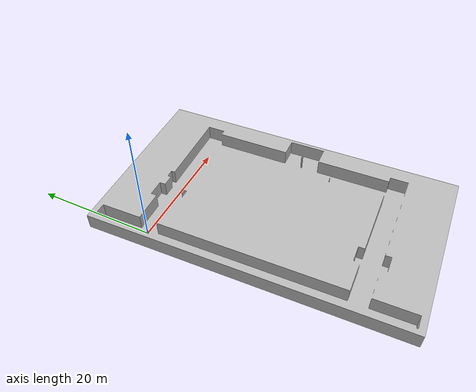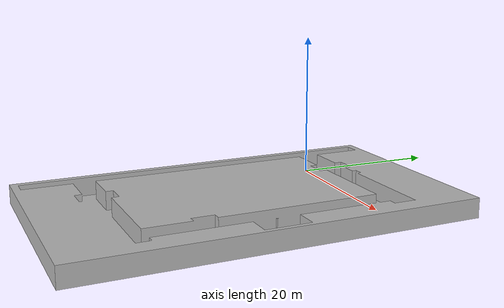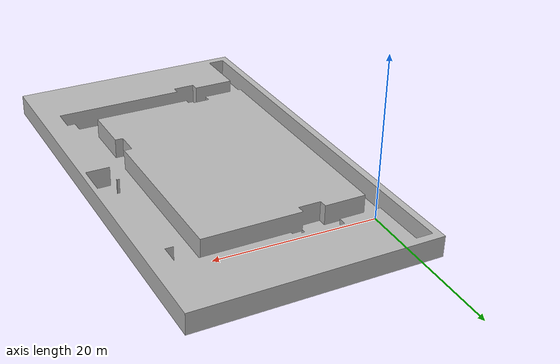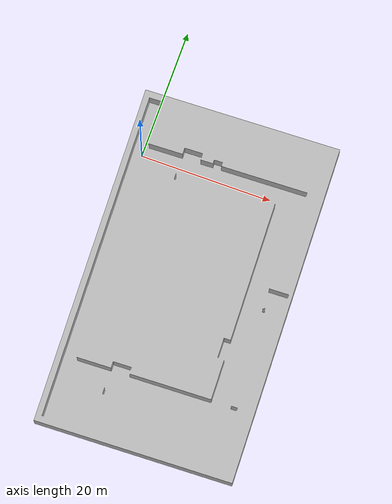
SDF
<?xml version="1.0"?>
<sdf version="1.4">
<world name="track_barca">

  <scene>
    <ambient>0.9 0.9 0.9 1.0</ambient>
    <shadows>0</shadows>
  </scene>

  <include>
    <uri>model://sun</uri>
    <pose>0.0 0.0 15.0 0 0 0</pose>
    <cast_shadows>false</cast_shadows>
    <attenuation>
      <constant>0.5</constant>
      <linear>0.01</linear>
      <quadratic>0.0</quadratic>
      <range>100</range>
    </attenuation>
  </include>

  <light type="point" name="Light 1">
              <pose>0 0 15 0 0 0</pose>
              <diffuse>.9 .9 .9 1</diffuse>
              <specular>.1 .1 .1 1</specular>
              <attenuation>
              <constant>0.5</constant>
              <linear>0.01</linear>
              <quadratic>0.0</quadratic>
              <range>50</range>
              </attenuation>
              <direction>0 0 -1</direction>
              <cast_shadows>false</cast_shadows>
  </light>

  <gui>
    <camera name="user_camera">
      <pose>-5 0 20 0 1.0 0</pose>
    </camera>
  </gui>

  <include>
    <uri>model://tbd_description/models/eccr_track</uri>
    <!-- Line below this may need to be changed - not sure what the pose does-->
    <pose> 1.2 -16.753082 0.0 1.575070 0.0 -1.536114</pose>
    <name>eccr_track</name>
  </include>

</world>
</sdf>

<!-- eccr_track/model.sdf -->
<sdf version='1.4'>
  <model name="eccr_track">
    <link name="link">
      <collision name="collision">
        <geometry>
          <mesh>
            <uri>model://tbd_description/meshes/eccr_track.stl</uri>
          </mesh>
        </geometry>
      </collision>
      <visual name="visual">
        <geometry>
          <mesh>
            <uri>model://tbd_description/meshes/eccr_track.stl</uri>
          </mesh>
        </geometry>
      </visual>
    </link>
    <static>1</static>
  </model>
</sdf>
